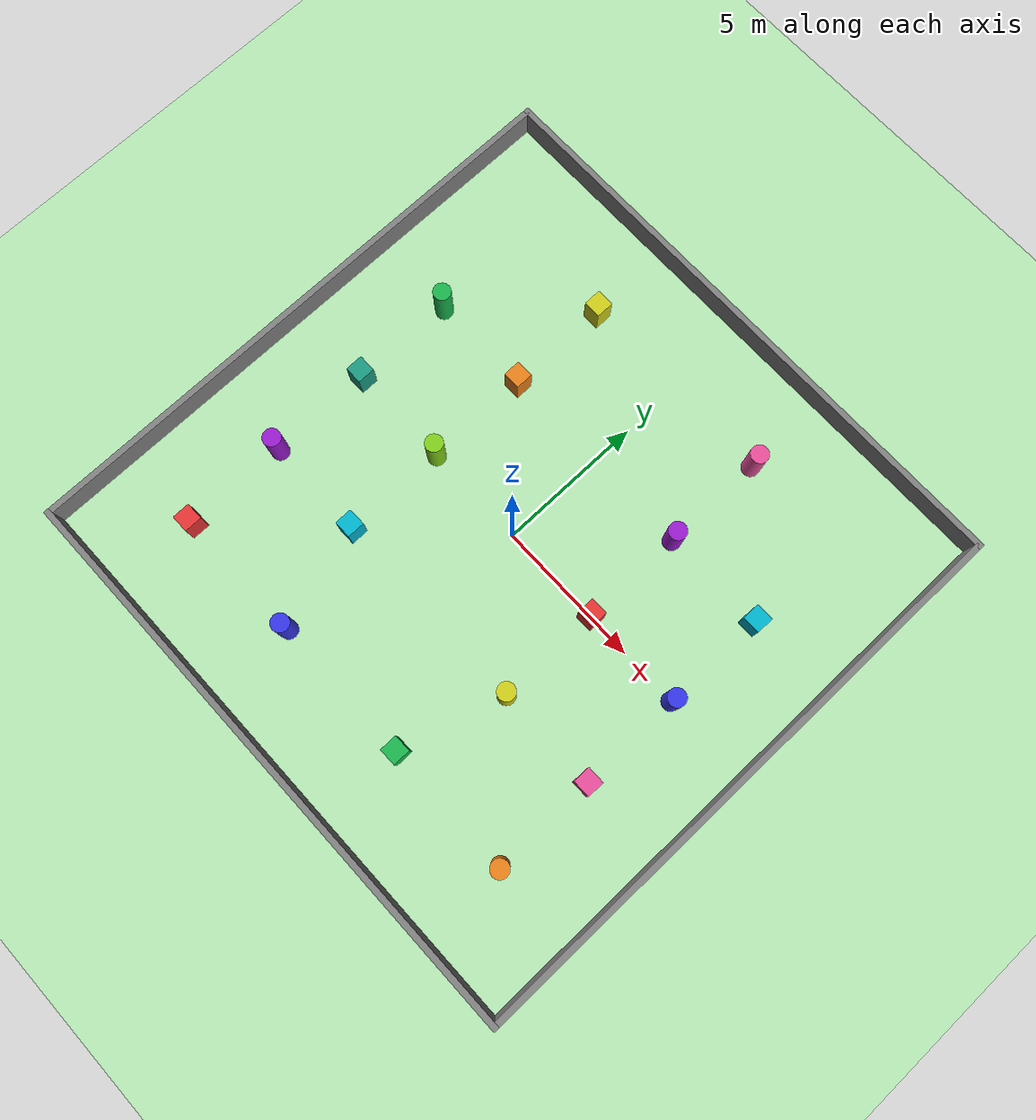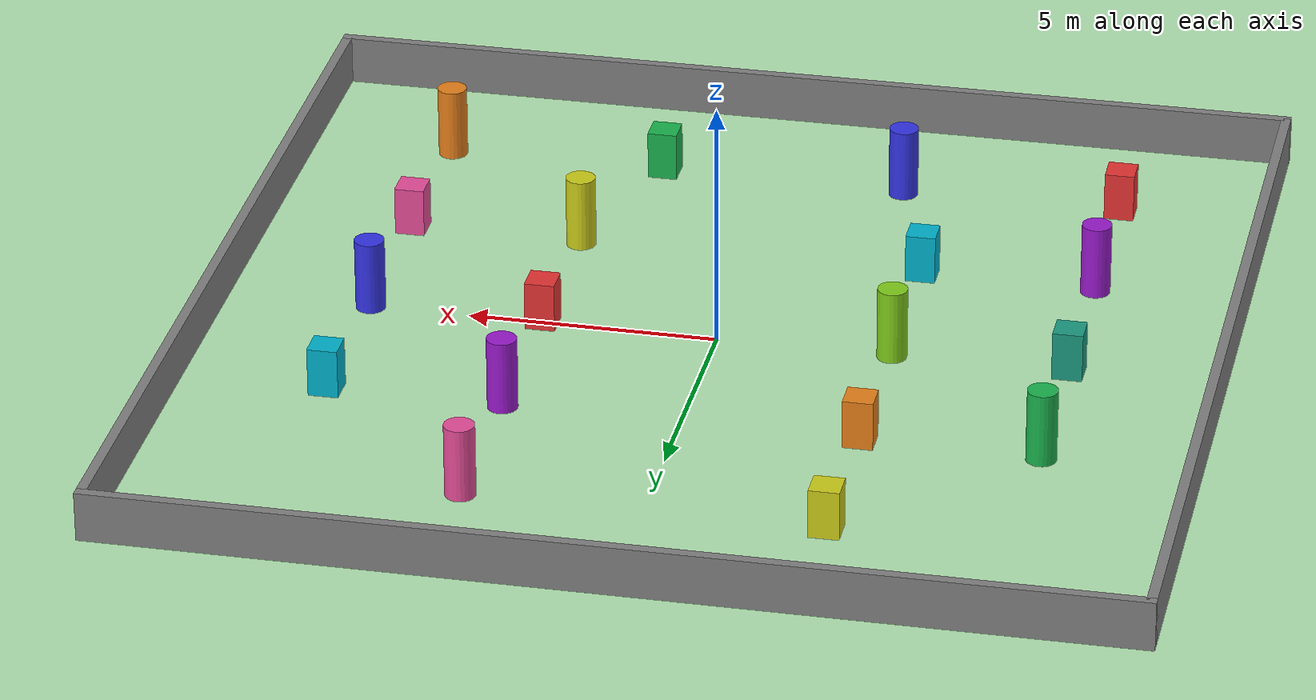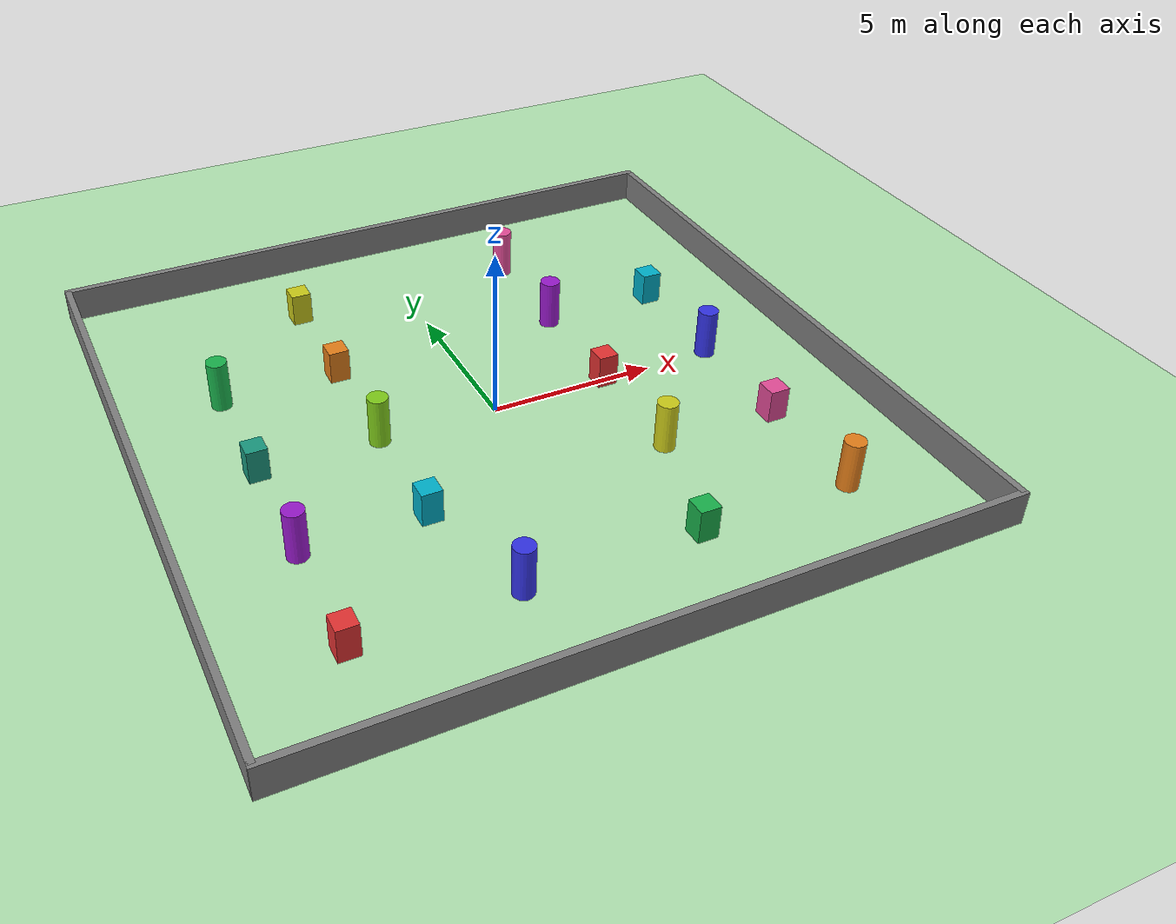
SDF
<?xml version="1.0" ?>
<sdf version="1.6">
  <world name="default">
    <physics name="1ms" type="ignored">
      <max_step_size>0.001</max_step_size>
      <real_time_factor>1.0</real_time_factor>
    </physics>
    <plugin filename="libignition-gazebo-physics-system.so"
            name="ignition::gazebo::systems::Physics"/>
    <plugin filename="libignition-gazebo-user-commands-system.so"
            name="ignition::gazebo::systems::UserCommands"/>
    <plugin filename="libignition-gazebo-scene-broadcaster-system.so"
            name="ignition::gazebo::systems::SceneBroadcaster"/>

    <light type="directional" name="sun">
      <cast_shadows>true</cast_shadows>
      <pose>0 0 10 0 0 0</pose>
      <diffuse>0.9 0.9 0.9 1</diffuse>
      <specular>0.3 0.3 0.3 1</specular>
      <attenuation>
        <range>1000</range><constant>0.9</constant>
        <linear>0.01</linear><quadratic>0.001</quadratic>
      </attenuation>
      <direction>-0.5 0.1 -0.9</direction>
    </light>

    <!-- Ground -->
    <model name="ground_plane"><static>true</static>
      <link name="link">
        <collision name="collision"><geometry><plane><normal>0 0 1</normal><size>100 100</size></plane></geometry></collision>
        <visual name="visual"><geometry><plane><normal>0 0 1</normal><size>100 100</size></plane></geometry>
          <material><ambient>0.7 0.9 0.7 1</ambient><diffuse>0.7 0.9 0.7 1</diffuse></material></visual>
      </link>
    </model>

    <!-- Outer boundary walls (20×20 m) -->
    <model name="wall_n"><static>true</static><pose>0 10 0.5 0 0 0</pose>
      <link name="link"><collision name="c"><geometry><box><size>20.2 0.2 1</size></box></geometry></collision>
        <visual name="v"><geometry><box><size>20.2 0.2 1</size></box></geometry>
          <material><ambient>0.5 0.5 0.5 1</ambient><diffuse>0.5 0.5 0.5 1</diffuse></material></visual></link>
    </model>
    <model name="wall_s"><static>true</static><pose>0 -10 0.5 0 0 0</pose>
      <link name="link"><collision name="c"><geometry><box><size>20.2 0.2 1</size></box></geometry></collision>
        <visual name="v"><geometry><box><size>20.2 0.2 1</size></box></geometry>
          <material><ambient>0.5 0.5 0.5 1</ambient><diffuse>0.5 0.5 0.5 1</diffuse></material></visual></link>
    </model>
    <model name="wall_e"><static>true</static><pose>10 0 0.5 0 0 0</pose>
      <link name="link"><collision name="c"><geometry><box><size>0.2 20 1</size></box></geometry></collision>
        <visual name="v"><geometry><box><size>0.2 20 1</size></box></geometry>
          <material><ambient>0.5 0.5 0.5 1</ambient><diffuse>0.5 0.5 0.5 1</diffuse></material></visual></link>
    </model>
    <model name="wall_w"><static>true</static><pose>-10 0 0.5 0 0 0</pose>
      <link name="link"><collision name="c"><geometry><box><size>0.2 20 1</size></box></geometry></collision>
        <visual name="v"><geometry><box><size>0.2 20 1</size></box></geometry>
          <material><ambient>0.5 0.5 0.5 1</ambient><diffuse>0.5 0.5 0.5 1</diffuse></material></visual></link>
    </model>

    <!-- ══ Row y=-7.0 ══════════════════════════════════════════ -->
    <model name="obs_1"><static>true</static><pose>-7.0 -7.0 0.5 0 0 0</pose>
      <link name="link"><collision name="c"><geometry><box><size>0.6 0.6 1</size></box></geometry></collision>
        <visual name="v"><geometry><box><size>0.6 0.6 1</size></box></geometry>
          <material><ambient>0.9 0.2 0.2 1</ambient><diffuse>0.9 0.2 0.2 1</diffuse></material></visual></link>
    </model>
    <model name="obs_2"><static>true</static><pose>-2.5 -7.0 0.75 0 0 0</pose>
      <link name="link"><collision name="c"><geometry><cylinder><radius>0.3</radius><length>1.5</length></cylinder></geometry></collision>
        <visual name="v"><geometry><cylinder><radius>0.3</radius><length>1.5</length></cylinder></geometry>
          <material><ambient>0.2 0.2 0.9 1</ambient><diffuse>0.2 0.2 0.9 1</diffuse></material></visual></link>
    </model>
    <model name="obs_3"><static>true</static><pose>2.5 -7.0 0.5 0 0 0</pose>
      <link name="link"><collision name="c"><geometry><box><size>0.6 0.6 1</size></box></geometry></collision>
        <visual name="v"><geometry><box><size>0.6 0.6 1</size></box></geometry>
          <material><ambient>0.1 0.7 0.3 1</ambient><diffuse>0.1 0.7 0.3 1</diffuse></material></visual></link>
    </model>
    <model name="obs_4"><static>true</static><pose>7.0 -7.0 0.75 0 0 0</pose>
      <link name="link"><collision name="c"><geometry><cylinder><radius>0.3</radius><length>1.5</length></cylinder></geometry></collision>
        <visual name="v"><geometry><cylinder><radius>0.3</radius><length>1.5</length></cylinder></geometry>
          <material><ambient>0.9 0.5 0.1 1</ambient><diffuse>0.9 0.5 0.1 1</diffuse></material></visual></link>
    </model>

    <!-- ══ Row y=-3.5 ══════════════════════════════════════════ -->
    <model name="obs_5"><static>true</static><pose>-7.0 -3.5 0.75 0 0 0</pose>
      <link name="link"><collision name="c"><geometry><cylinder><radius>0.3</radius><length>1.5</length></cylinder></geometry></collision>
        <visual name="v"><geometry><cylinder><radius>0.3</radius><length>1.5</length></cylinder></geometry>
          <material><ambient>0.6 0.1 0.8 1</ambient><diffuse>0.6 0.1 0.8 1</diffuse></material></visual></link>
    </model>
    <model name="obs_6"><static>true</static><pose>-3.5 -3.5 0.5 0 0 0</pose>
      <link name="link"><collision name="c"><geometry><box><size>0.6 0.6 1</size></box></geometry></collision>
        <visual name="v"><geometry><box><size>0.6 0.6 1</size></box></geometry>
          <material><ambient>0.0 0.7 0.8 1</ambient><diffuse>0.0 0.7 0.8 1</diffuse></material></visual></link>
    </model>
    <model name="obs_7"><static>true</static><pose>3.5 -3.5 0.75 0 0 0</pose>
      <link name="link"><collision name="c"><geometry><cylinder><radius>0.3</radius><length>1.5</length></cylinder></geometry></collision>
        <visual name="v"><geometry><cylinder><radius>0.3</radius><length>1.5</length></cylinder></geometry>
          <material><ambient>0.8 0.8 0.1 1</ambient><diffuse>0.8 0.8 0.1 1</diffuse></material></visual></link>
    </model>
    <model name="obs_8"><static>true</static><pose>7.0 -3.5 0.5 0 0 0</pose>
      <link name="link"><collision name="c"><geometry><box><size>0.6 0.6 1</size></box></geometry></collision>
        <visual name="v"><geometry><box><size>0.6 0.6 1</size></box></geometry>
          <material><ambient>0.9 0.3 0.6 1</ambient><diffuse>0.9 0.3 0.6 1</diffuse></material></visual></link>
    </model>

    <!-- ══ Row y=0 (skip center ±1.5 m — clear spawn) ════════ -->
    <model name="obs_9"><static>true</static><pose>-7.0 0.0 0.5 0 0 0</pose>
      <link name="link"><collision name="c"><geometry><box><size>0.6 0.6 1</size></box></geometry></collision>
        <visual name="v"><geometry><box><size>0.6 0.6 1</size></box></geometry>
          <material><ambient>0.1 0.6 0.5 1</ambient><diffuse>0.1 0.6 0.5 1</diffuse></material></visual></link>
    </model>
    <model name="obs_10"><static>true</static><pose>-3.5 0.0 0.75 0 0 0</pose>
      <link name="link"><collision name="c"><geometry><cylinder><radius>0.3</radius><length>1.5</length></cylinder></geometry></collision>
        <visual name="v"><geometry><cylinder><radius>0.3</radius><length>1.5</length></cylinder></geometry>
          <material><ambient>0.5 0.8 0.1 1</ambient><diffuse>0.5 0.8 0.1 1</diffuse></material></visual></link>
    </model>
    <model name="obs_11"><static>true</static><pose>3.5 0.0 0.5 0 0 0</pose>
      <link name="link"><collision name="c"><geometry><box><size>0.6 0.6 1</size></box></geometry></collision>
        <visual name="v"><geometry><box><size>0.6 0.6 1</size></box></geometry>
          <material><ambient>0.9 0.2 0.2 1</ambient><diffuse>0.9 0.2 0.2 1</diffuse></material></visual></link>
    </model>
    <model name="obs_12"><static>true</static><pose>7.0 0.0 0.75 0 0 0</pose>
      <link name="link"><collision name="c"><geometry><cylinder><radius>0.3</radius><length>1.5</length></cylinder></geometry></collision>
        <visual name="v"><geometry><cylinder><radius>0.3</radius><length>1.5</length></cylinder></geometry>
          <material><ambient>0.2 0.2 0.9 1</ambient><diffuse>0.2 0.2 0.9 1</diffuse></material></visual></link>
    </model>

    <!-- ══ Row y=+3.5 ══════════════════════════════════════════ -->
    <model name="obs_13"><static>true</static><pose>-7.0 3.5 0.75 0 0 0</pose>
      <link name="link"><collision name="c"><geometry><cylinder><radius>0.3</radius><length>1.5</length></cylinder></geometry></collision>
        <visual name="v"><geometry><cylinder><radius>0.3</radius><length>1.5</length></cylinder></geometry>
          <material><ambient>0.1 0.7 0.3 1</ambient><diffuse>0.1 0.7 0.3 1</diffuse></material></visual></link>
    </model>
    <model name="obs_14"><static>true</static><pose>-3.5 3.5 0.5 0 0 0</pose>
      <link name="link"><collision name="c"><geometry><box><size>0.6 0.6 1</size></box></geometry></collision>
        <visual name="v"><geometry><box><size>0.6 0.6 1</size></box></geometry>
          <material><ambient>0.9 0.5 0.1 1</ambient><diffuse>0.9 0.5 0.1 1</diffuse></material></visual></link>
    </model>
    <model name="obs_15"><static>true</static><pose>3.5 3.5 0.75 0 0 0</pose>
      <link name="link"><collision name="c"><geometry><cylinder><radius>0.3</radius><length>1.5</length></cylinder></geometry></collision>
        <visual name="v"><geometry><cylinder><radius>0.3</radius><length>1.5</length></cylinder></geometry>
          <material><ambient>0.6 0.1 0.8 1</ambient><diffuse>0.6 0.1 0.8 1</diffuse></material></visual></link>
    </model>
    <model name="obs_16"><static>true</static><pose>7.0 3.5 0.5 0 0 0</pose>
      <link name="link"><collision name="c"><geometry><box><size>0.6 0.6 1</size></box></geometry></collision>
        <visual name="v"><geometry><box><size>0.6 0.6 1</size></box></geometry>
          <material><ambient>0.0 0.7 0.8 1</ambient><diffuse>0.0 0.7 0.8 1</diffuse></material></visual></link>
    </model>

    <!-- ══ Row y=+7.0 ══════════════════════════════════════════ -->
    <model name="obs_17"><static>true</static><pose>-3.5 7.0 0.5 0 0 0</pose>
      <link name="link"><collision name="c"><geometry><box><size>0.6 0.6 1</size></box></geometry></collision>
        <visual name="v"><geometry><box><size>0.6 0.6 1</size></box></geometry>
          <material><ambient>0.8 0.8 0.1 1</ambient><diffuse>0.8 0.8 0.1 1</diffuse></material></visual></link>
    </model>
    <model name="obs_18"><static>true</static><pose>3.5 7.0 0.75 0 0 0</pose>
      <link name="link"><collision name="c"><geometry><cylinder><radius>0.3</radius><length>1.5</length></cylinder></geometry></collision>
        <visual name="v"><geometry><cylinder><radius>0.3</radius><length>1.5</length></cylinder></geometry>
          <material><ambient>0.9 0.3 0.6 1</ambient><diffuse>0.9 0.3 0.6 1</diffuse></material></visual></link>
    </model>

  </world>
</sdf>
